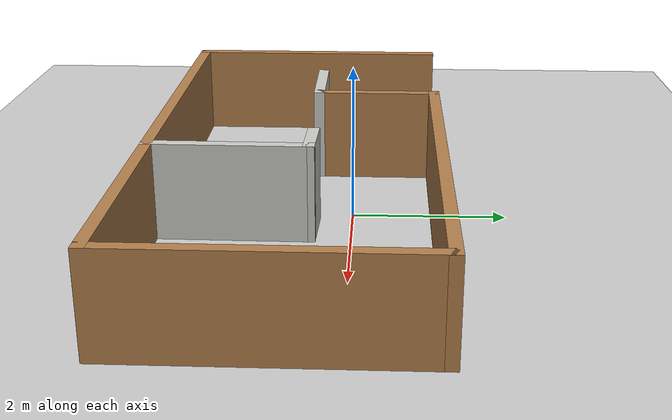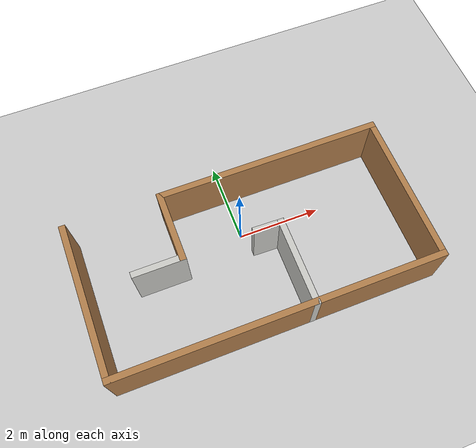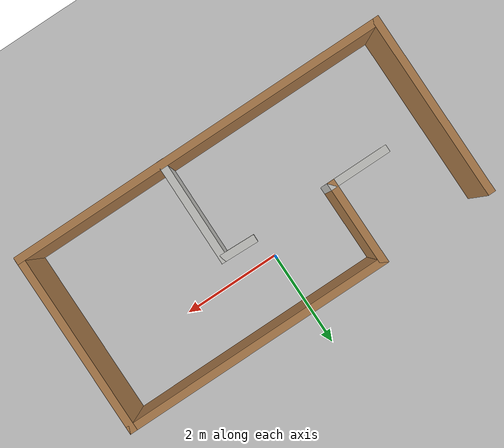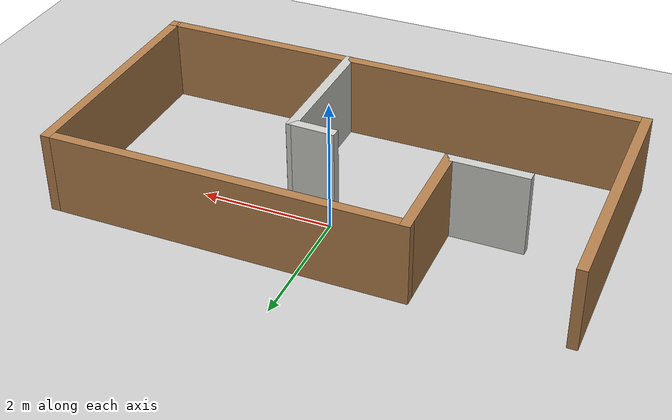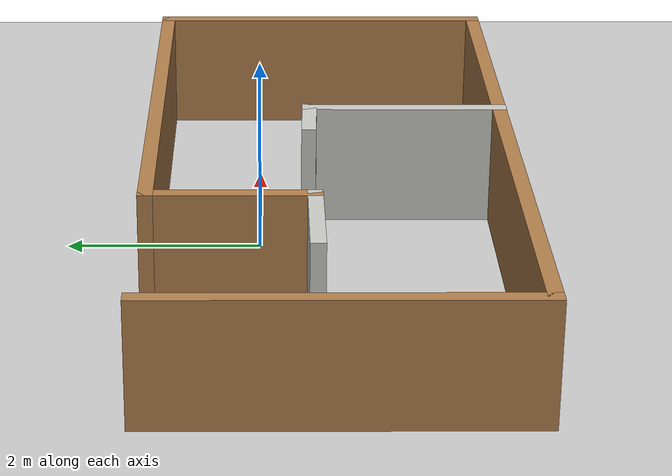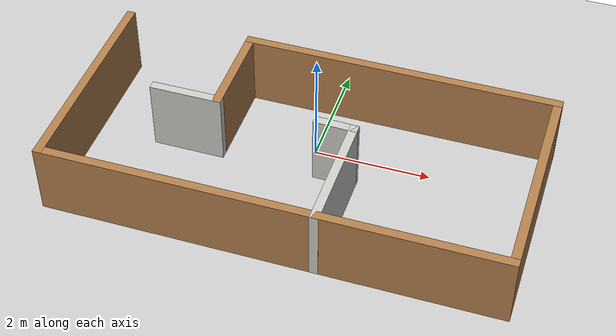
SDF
<?xml version="1.0" ?>
<sdf version="1.6">
  <world name="skid6x6_world">

    <!-- Add ground -->
    <include>
      <uri>model://ground_plane</uri>
    </include>

    <!-- Add sun -->
    <include>
      <uri>model://sun</uri>
    </include>

    <!-- Include your custom object (world2) -->
    <include>
      <uri>model://world2</uri>
      <name>world2</name>
      <pose>0 0 0 0 0 0</pose>
    </include>

    <!-- Optional scene lighting -->
    <scene>
      <ambient>0.4 0.4 0.4 1</ambient>
      <background>0.7 0.7 0.7 1</background>
      <shadows>true</shadows>
    </scene>

  </world>
</sdf>

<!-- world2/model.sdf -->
<sdf version='1.7'>
  <model name='world2'>
    <pose>-1.16 -2.58733 0 0 -0 0</pose>
    <link name='Wall_10'>
      <collision name='Wall_10_Collision'>
        <geometry>
          <box>
            <size>0.751019 0.15 1.5</size>
          </box>
        </geometry>
        <pose>0 0 0.5 0 -0 0</pose>
      </collision>
      <visual name='Wall_10_Visual'>
        <pose>0 0 0.5 0 -0 0</pose>
        <geometry>
          <box>
            <size>0.751019 0.15 1.5</size>
          </box>
        </geometry>
        <material>
          <script>
            <uri>file://media/materials/scripts/gazebo.material</uri>
            <name>Gazebo/CeilingTiled</name>
          </script>
          <ambient>1 1 1 1</ambient>
        </material>
        <meta>
          <layer>0</layer>
        </meta>
      </visual>
      <pose>0.491 -0.507666 0 0 -0 3.1116</pose>
    </link>
    <link name='Wall_2'>
      <collision name='Wall_2_Collision'>
        <geometry>
          <box>
            <size>3.75 0.15 1.5</size>
          </box>
        </geometry>
        <pose>0 0 0.5 0 -0 0</pose>
      </collision>
      <visual name='Wall_2_Visual'>
        <pose>0 0 0.5 0 -0 0</pose>
        <geometry>
          <box>
            <size>3.75 0.15 1.5</size>
          </box>
        </geometry>
        <material>
          <script>
            <uri>file://media/materials/scripts/gazebo.material</uri>
            <name>Gazebo/Wood</name>
          </script>
          <ambient>1 1 1 1</ambient>
        </material>
        <meta>
          <layer>0</layer>
        </meta>
      </visual>
      <pose>-3.809 -0.708666 0 0 -0 -1.5708</pose>
    </link>
    <link name='Wall_3'>
      <collision name='Wall_3_Collision'>
        <geometry>
          <box>
            <size>7.76779 0.15 1.5</size>
          </box>
        </geometry>
        <pose>0 0 0.5 0 -0 0</pose>
      </collision>
      <visual name='Wall_3_Visual'>
        <pose>0 0 0.5 0 -0 0</pose>
        <geometry>
          <box>
            <size>7.76779 0.15 1.5</size>
          </box>
        </geometry>
        <material>
          <script>
            <uri>file://media/materials/scripts/gazebo.material</uri>
            <name>Gazebo/Wood</name>
          </script>
          <ambient>1 1 1 1</ambient>
        </material>
        <meta>
          <layer>0</layer>
        </meta>
      </visual>
      <pose>0 -2.50867 0 0 -0 0</pose>
    </link>
    <link name='Wall_4'>
      <collision name='Wall_4_Collision'>
        <geometry>
          <box>
            <size>3.75 0.15 1.5</size>
          </box>
        </geometry>
        <pose>0 0 0.5 0 -0 0</pose>
      </collision>
      <visual name='Wall_4_Visual'>
        <pose>0 0 0.5 0 -0 0</pose>
        <geometry>
          <box>
            <size>3.75 0.15 1.5</size>
          </box>
        </geometry>
        <material>
          <script>
            <uri>file://media/materials/scripts/gazebo.material</uri>
            <name>Gazebo/Wood</name>
          </script>
          <ambient>1 1 1 1</ambient>
        </material>
        <meta>
          <layer>0</layer>
        </meta>
      </visual>
      <pose>3.809 -0.708666 0 0 -0 1.5708</pose>
    </link>
    <link name='Wall_5'>
      <collision name='Wall_5_Collision'>
        <geometry>
          <box>
            <size>5.5 0.15 1.5</size>
          </box>
        </geometry>
        <pose>0 0 0.5 0 -0 0</pose>
      </collision>
      <visual name='Wall_5_Visual'>
        <pose>0 0 0.5 0 -0 0</pose>
        <geometry>
          <box>
            <size>5.5 0.15 1.5</size>
          </box>
        </geometry>
        <material>
          <script>
            <uri>file://media/materials/scripts/gazebo.material</uri>
            <name>Gazebo/Wood</name>
          </script>
          <ambient>1 1 1 1</ambient>
        </material>
        <meta>
          <layer>0</layer>
        </meta>
      </visual>
      <pose>1.134 1.09133 0 0 -0 3.14159</pose>
    </link>
    <link name='Wall_6'>
      <collision name='Wall_6_Collision'>
        <geometry>
          <box>
            <size>1.767 0.15 1.5</size>
          </box>
        </geometry>
        <pose>0 0 0.5 0 -0 0</pose>
      </collision>
      <visual name='Wall_6_Visual'>
        <pose>0 0 0.5 0 -0 0</pose>
        <geometry>
          <box>
            <size>1.767 0.15 1.5</size>
          </box>
        </geometry>
        <material>
          <script>
            <uri>file://media/materials/scripts/gazebo.material</uri>
            <name>Gazebo/Wood</name>
          </script>
          <ambient>1 1 1 1</ambient>
        </material>
        <meta>
          <layer>0</layer>
        </meta>
      </visual>
      <pose>-1.541 0.282834 0 0 -0 -1.5708</pose>
    </link>
    <link name='Wall_7'>
      <collision name='Wall_7_Collision'>
        <geometry>
          <box>
            <size>1.25 0.15 1.5</size>
          </box>
        </geometry>
        <pose>0 0 0.5 0 -0 0</pose>
      </collision>
      <visual name='Wall_7_Visual'>
        <pose>0 0 0.5 0 -0 0</pose>
        <geometry>
          <box>
            <size>1.25 0.15 1.5</size>
          </box>
        </geometry>
        <material>
          <script>
            <uri>file://media/materials/scripts/gazebo.material</uri>
            <name>Gazebo/CeilingTiled</name>
          </script>
          <ambient>1 1 1 1</ambient>
        </material>
        <meta>
          <layer>0</layer>
        </meta>
      </visual>
      <pose>-2.091 -0.525666 0 0 -0 3.14159</pose>
    </link>
    <link name='Wall_9'>
      <collision name='Wall_9_Collision'>
        <geometry>
          <box>
            <size>2.14514 0.15 1.5</size>
          </box>
        </geometry>
        <pose>0 0 0.5 0 -0 0</pose>
      </collision>
      <visual name='Wall_9_Visual'>
        <pose>0 0 0.5 0 -0 0</pose>
        <geometry>
          <box>
            <size>2.14514 0.15 1.5</size>
          </box>
        </geometry>
        <material>
          <script>
            <uri>file://media/materials/scripts/gazebo.material</uri>
            <name>Gazebo/CeilingTiled</name>
          </script>
          <ambient>1 1 1 1</ambient>
        </material>
        <meta>
          <layer>0</layer>
        </meta>
      </visual>
      <pose>0.7825 -1.51417 0 0 -0 1.56228</pose>
    </link>
    <static>1</static>
  </model>
</sdf>
